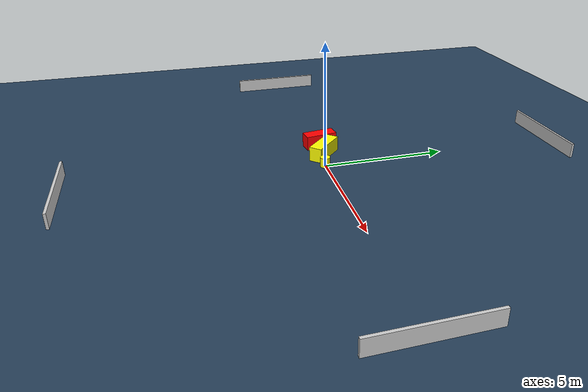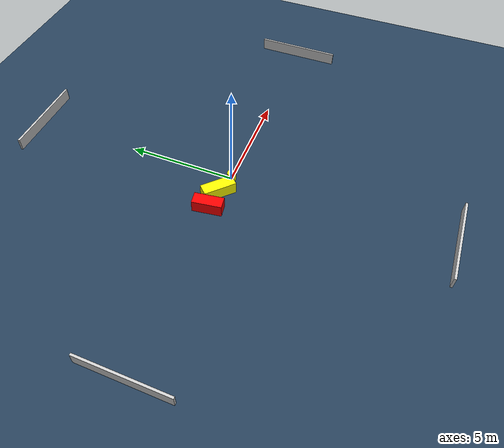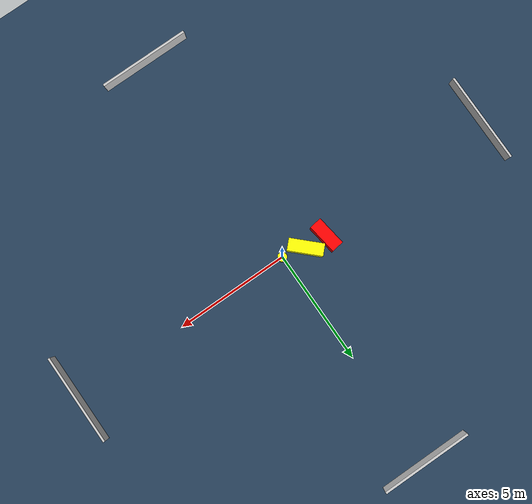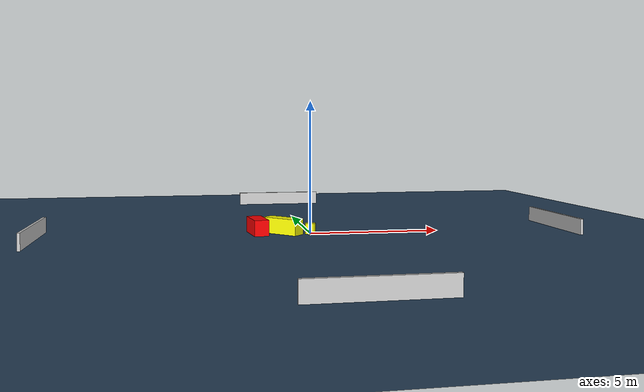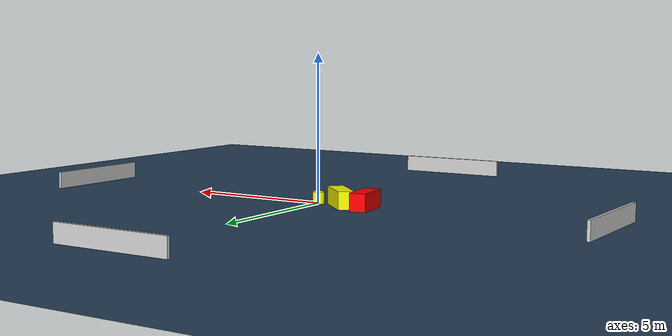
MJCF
<?xml version="1.0" ?>
<mujoco model="generated_environment">
  <option timestep="0.01" integrator="RK4" cone="elliptic"/>
  <default>
    <geom density="1"/>
  </default>
  <asset>
    <texture builtin="gradient" height="3072" name="skybox" rgb1="0.3 0.5 0.7" rgb2="0 0 0" type="skybox" width="512"/>
    <texture builtin="checker" height="300" name="groundplane" rgb1="0.2 0.3 0.4" rgb2="0.1 0.2 0.3" type="2d" width="300"/>
    <material name="groundplane" reflectance="0.2" texrepeat="5 5" texture="groundplane"/>
  </asset>
  <worldbody>
    <light dir="0 0 -1" directional="true" pos="0 0 1.5"/>
    <geom condim="3" friction="0.5 0.005 0.001" material="groundplane" name="floor" pos="0 0 0" size="0 0 0.05" type="plane"/>
    <body name="walls">
      <geom name="wall_1" condim="4" pos="-10.0 0.0 0.3" rgba="0.800000011920929 0.800000011920929 0.800000011920929 1.0" size="0.05 2.0 0.3" type="box"/>
      <geom name="wall_2" condim="4" pos="10.0 0.0 0.3" rgba="0.800000011920929 0.800000011920929 0.800000011920929 1.0" size="0.05 2.0 0.3" type="box"/>
      <geom name="wall_3" condim="4" pos="0.0 -10.0 0.3" rgba="0.800000011920929 0.800000011920929 0.800000011920929 1.0" size="2.0 0.05 0.3" type="box"/>
      <geom name="wall_4" condim="4" pos="0.0 10.0 0.3" rgba="0.800000011920929 0.800000011920929 0.800000011920929 1.0" size="2.0 0.05 0.3" type="box"/>
    </body>
    <body name="robot">
      <joint name="joint_x" type="slide" pos="0 0 0" axis="1 0 0"/>
      <joint name="joint_y" type="slide" pos="0 0 0" axis="0 1 0"/>
      <geom name="robot" type="cylinder" pos="0.0 0.0 0.2" size="0.2 0.2 0.0" mass="5.0" friction="1.0 0.005 0.0001" condim="4" rgba="1.0 1.0 0.0 1.0"/>
    </body>
    <body name="obstacle_1_movable">
      <geom name="obstacle_1_movable" condim="4" pos="-1.0084588094827316 0.22931968415358908 0.3" euler="0 0 135.9395453788017" friction="0.0 0.005 0.001" rgba="1.0 1.0 0.0 1.0" size="0.7477529731652419 0.2668821178860877 0.3" type="box" mass="0.1"/>
      <joint type="free"/>
    </body>
    <body name="obstacle_2_static">
      <geom name="obstacle_2_static" condim="4" pos="-1.9735637885294686 0.3036938291977403 0.3" euler="0 0 188.30736996669643" friction="0.0 0.005 0.001" rgba="1.0 0.0 0.0 1.0" size="0.27264569002292044 0.6655569976813915 0.3" type="box"/>
    </body>
  </worldbody>
  <actuator>
    <motor name="actuator_x" joint="joint_x" gear="1" ctrlrange="-1 1"/>
    <motor name="actuator_y" joint="joint_y" gear="1" ctrlrange="-1 1"/>
  </actuator>
</mujoco>
